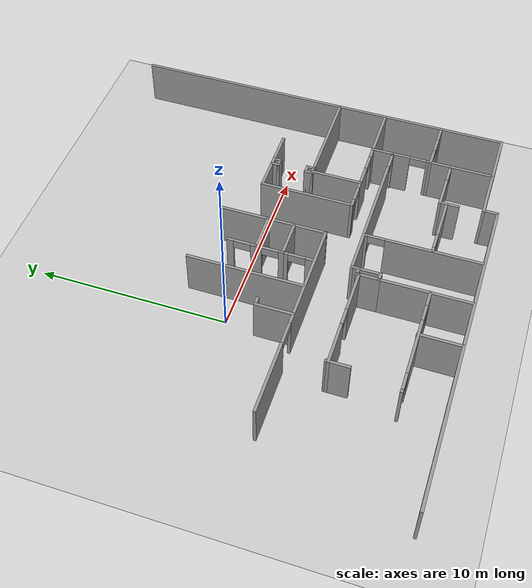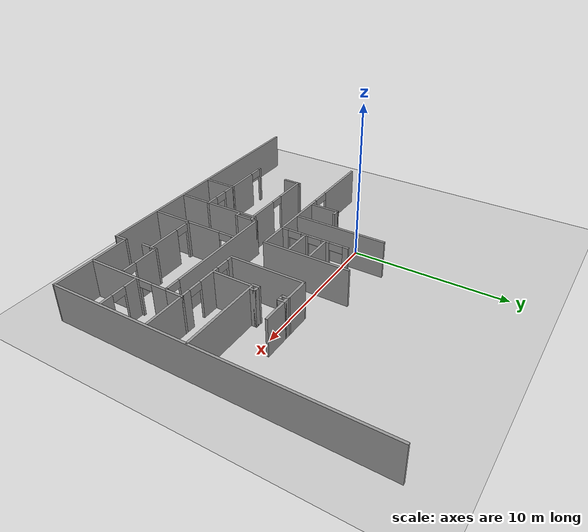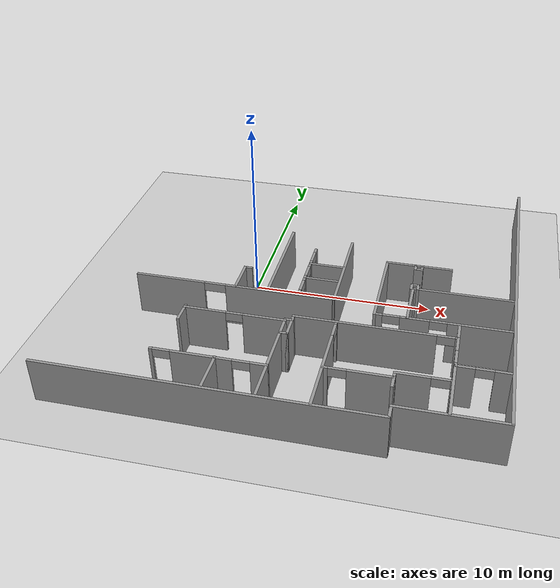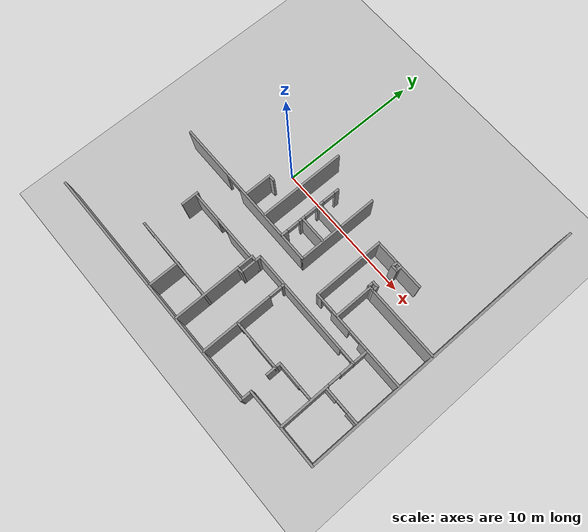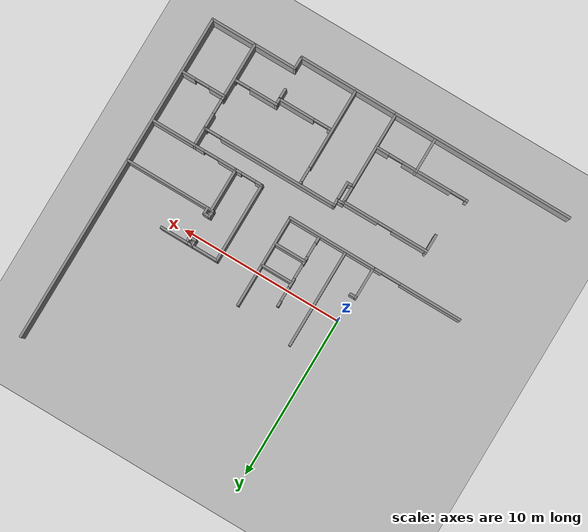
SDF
<sdf version="1.6">
 <world name="default">
  <model name="ground_plane">
   <static>1</static>
   <link name="link">
    <collision name="collision">
     <geometry><plane><normal>0 0 1</normal><size>100 100</size></plane></geometry>
     <surface><friction><ode><mu>100</mu><mu2>50</mu2></ode></friction></surface>
    </collision>
    <visual name="visual">
     <cast_shadows>0</cast_shadows>
     <geometry><plane><normal>0 0 1</normal><size>100 100</size></plane></geometry>
     <material>
      <script><uri>file://media/materials/scripts/gazebo.material</uri><name>Gazebo/Grey</name></script>
     </material>
    </visual>
   </link>
  </model>
  <model name="office02">
   <pose>-0.0751 -0.58893 0 0 -0 0</pose>
   <link name="Wall_101">
    <pose>0.512397 -5.21238 0 0 -0 0</pose>
    <visual name="Wall_101_Visual_0">
     <pose>-1.60035 0 1.25 0 -0 0</pose>
     <geometry><box><size>2.29931 0.15 2.5</size></box></geometry>
     <material>
      <script><uri>file://media/materials/scripts/gazebo.material</uri><name>Gazebo/Grey</name></script>
      <ambient>1 1 1 1</ambient>
     </material>
     <meta><layer>0</layer></meta>
    </visual>
    <collision name="Wall_101_Collision_0">
     <geometry><box><size>2.29931 0.15 2.5</size></box></geometry>
     <pose>-1.60035 0 1.25 0 -0 0</pose>
    </collision>
    <visual name="Wall_101_Visual_1">
     <pose>1.59965 0 1.25 0 -0 0</pose>
     <geometry><box><size>2.30069 0.15 2.5</size></box></geometry>
     <material>
      <script><uri>file://media/materials/scripts/gazebo.material</uri><name>Gazebo/Grey</name></script>
      <ambient>1 1 1 1</ambient>
     </material>
     <meta><layer>0</layer></meta>
    </visual>
    <collision name="Wall_101_Collision_1">
     <geometry><box><size>2.30069 0.15 2.5</size></box></geometry>
     <pose>1.59965 0 1.25 0 -0 0</pose>
    </collision>
    <visual name="Wall_101_Visual_2">
     <pose>-0.000692 0 2.25 0 -0 0</pose>
     <geometry><box><size>0.9 0.15 0.5</size></box></geometry>
     <material>
      <script><uri>file://media/materials/scripts/gazebo.material</uri><name>Gazebo/Grey</name></script>
      <ambient>1 1 1 1</ambient>
     </material>
     <meta><layer>0</layer></meta>
    </visual>
    <collision name="Wall_101_Collision_2">
     <geometry><box><size>0.9 0.15 0.5</size></box></geometry>
     <pose>-0.000692 0 2.25 0 -0 0</pose>
    </collision>
   </link>
   <link name="Wall_102">
    <collision name="Wall_102_Collision">
     <geometry><box><size>0.25 0.15 2.5</size></box></geometry>
     <pose>0 0 1.25 0 -0 0</pose>
    </collision>
    <visual name="Wall_102_Visual">
     <pose>0 0 1.25 0 -0 0</pose>
     <geometry><box><size>0.25 0.15 2.5</size></box></geometry>
     <material>
      <script><uri>file://media/materials/scripts/gazebo.material</uri><name>Gazebo/Grey</name></script>
      <ambient>1 1 1 1</ambient>
     </material>
     <meta><layer>0</layer></meta>
    </visual>
    <pose>3.1874 -5.16238 0 0 -0 1.5708</pose>
   </link>
   <link name="Wall_107">
    <collision name="Wall_107_Collision">
     <geometry><box><size>1.25 0.15 2.5</size></box></geometry>
     <pose>0 0 1.25 0 -0 0</pose>
    </collision>
    <visual name="Wall_107_Visual">
     <pose>0 0 1.25 0 -0 0</pose>
     <geometry><box><size>1.25 0.15 2.5</size></box></geometry>
     <material>
      <script><uri>file://media/materials/scripts/gazebo.material</uri><name>Gazebo/Grey</name></script>
      <ambient>1 1 1 1</ambient>
     </material>
     <meta><layer>0</layer></meta>
    </visual>
    <pose>3.1874 -5.66238 0 0 -0 -1.5708</pose>
   </link>
   <link name="Wall_115">
    <collision name="Wall_115_Collision">
     <geometry><box><size>0.5 0.15 2.5</size></box></geometry>
     <pose>0 0 1.25 0 -0 0</pose>
    </collision>
    <visual name="Wall_115_Visual">
     <pose>0 0 1.25 0 -0 0</pose>
     <geometry><box><size>0.5 0.15 2.5</size></box></geometry>
     <material>
      <script><uri>file://media/materials/scripts/gazebo.material</uri><name>Gazebo/Grey</name></script>
      <ambient>1 1 1 1</ambient>
     </material>
     <meta><layer>0</layer></meta>
    </visual>
    <pose>3.3624 -5.11238 0 0 -0 0</pose>
   </link>
   <link name="Wall_116">
    <collision name="Wall_116_Collision">
     <geometry><box><size>1.25 0.15 2.5</size></box></geometry>
     <pose>0 0 1.25 0 -0 0</pose>
    </collision>
    <visual name="Wall_116_Visual">
     <pose>0 0 1.25 0 -0 0</pose>
     <geometry><box><size>1.25 0.15 2.5</size></box></geometry>
     <material>
      <script><uri>file://media/materials/scripts/gazebo.material</uri><name>Gazebo/Grey</name></script>
      <ambient>1 1 1 1</ambient>
     </material>
     <meta><layer>0</layer></meta>
    </visual>
    <pose>3.5374 -5.66238 0 0 -0 -1.5708</pose>
   </link>
   <link name="Wall_117">
    <collision name="Wall_117_Collision">
     <geometry><box><size>0.5 0.15 2.5</size></box></geometry>
     <pose>0 0 1.25 0 -0 0</pose>
    </collision>
    <visual name="Wall_117_Visual">
     <pose>0 0 1.25 0 -0 0</pose>
     <geometry><box><size>0.5 0.15 2.5</size></box></geometry>
     <material>
      <script><uri>file://media/materials/scripts/gazebo.material</uri><name>Gazebo/Grey</name></script>
      <ambient>1 1 1 1</ambient>
     </material>
     <meta><layer>0</layer></meta>
    </visual>
    <pose>3.3624 -6.21238 0 0 -0 3.14159</pose>
   </link>
   <link name="Wall_119">
    <collision name="Wall_119_Collision">
     <geometry><box><size>4.75 0.15 2.5</size></box></geometry>
     <pose>0 0 1.25 0 -0 0</pose>
    </collision>
    <visual name="Wall_119_Visual">
     <pose>0 0 1.25 0 -0 0</pose>
     <geometry><box><size>4.75 0.15 2.5</size></box></geometry>
     <material>
      <script><uri>file://media/materials/scripts/gazebo.material</uri><name>Gazebo/Grey</name></script>
      <ambient>1 1 1 1</ambient>
     </material>
     <meta><layer>0</layer></meta>
    </visual>
    <pose>3.1874 -8.51238 0 0 -0 -1.5708</pose>
   </link>
   <link name="Wall_124">
    <pose>0.265299 -8.75263 0 0 -0 0</pose>
    <visual name="Wall_124_Visual_0">
     <pose>-2.91065 0 1.25 0 -0 0</pose>
     <geometry><box><size>0.178694 0.15 2.5</size></box></geometry>
     <material>
      <script><uri>file://media/materials/scripts/gazebo.material</uri><name>Gazebo/Grey</name></script>
      <ambient>1 1 1 1</ambient>
     </material>
     <meta><layer>0</layer></meta>
    </visual>
    <collision name="Wall_124_Collision_0">
     <geometry><box><size>0.178694 0.15 2.5</size></box></geometry>
     <pose>-2.91065 0 1.25 0 -0 0</pose>
    </collision>
    <visual name="Wall_124_Visual_1">
     <pose>-0.358875 0 1.25 0 -0 0</pose>
     <geometry><box><size>3.12486 0.15 2.5</size></box></geometry>
     <material>
      <script><uri>file://media/materials/scripts/gazebo.material</uri><name>Gazebo/Grey</name></script>
      <ambient>1 1 1 1</ambient>
     </material>
     <meta><layer>0</layer></meta>
    </visual>
    <collision name="Wall_124_Collision_1">
     <geometry><box><size>3.12486 0.15 2.5</size></box></geometry>
     <pose>-0.358875 0 1.25 0 -0 0</pose>
    </collision>
    <visual name="Wall_124_Visual_2">
     <pose>2.55178 0 1.25 0 -0 0</pose>
     <geometry><box><size>0.896444 0.15 2.5</size></box></geometry>
     <material>
      <script><uri>file://media/materials/scripts/gazebo.material</uri><name>Gazebo/Grey</name></script>
      <ambient>1 1 1 1</ambient>
     </material>
     <meta><layer>0</layer></meta>
    </visual>
    <collision name="Wall_124_Collision_2">
     <geometry><box><size>0.896444 0.15 2.5</size></box></geometry>
     <pose>2.55178 0 1.25 0 -0 0</pose>
    </collision>
    <visual name="Wall_124_Visual_3">
     <pose>-2.37131 0 2.25 0 -0 0</pose>
     <geometry><box><size>0.9 0.15 0.5</size></box></geometry>
     <material>
      <script><uri>file://media/materials/scripts/gazebo.material</uri><name>Gazebo/Grey</name></script>
      <ambient>1 1 1 1</ambient>
     </material>
     <meta><layer>0</layer></meta>
    </visual>
    <collision name="Wall_124_Collision_3">
     <geometry><box><size>0.9 0.15 0.5</size></box></geometry>
     <pose>-2.37131 0 2.25 0 -0 0</pose>
    </collision>
    <visual name="Wall_124_Visual_4">
     <pose>1.65356 0 2.25 0 -0 0</pose>
     <geometry><box><size>0.9 0.15 0.5</size></box></geometry>
     <material>
      <script><uri>file://media/materials/scripts/gazebo.material</uri><name>Gazebo/Grey</name></script>
      <ambient>1 1 1 1</ambient>
     </material>
     <meta><layer>0</layer></meta>
    </visual>
    <collision name="Wall_124_Collision_4">
     <geometry><box><size>0.9 0.15 0.5</size></box></geometry>
     <pose>1.65356 0 2.25 0 -0 0</pose>
    </collision>
   </link>
   <link name="Wall_126">
    <collision name="Wall_126_Collision">
     <geometry><box><size>2.25 0.15 2.5</size></box></geometry>
     <pose>0 0 1.25 0 -0 0</pose>
    </collision>
    <visual name="Wall_126_Visual">
     <pose>0 0 1.25 0 -0 0</pose>
     <geometry><box><size>2.25 0.15 2.5</size></box></geometry>
     <material>
      <script><uri>file://media/materials/scripts/gazebo.material</uri><name>Gazebo/Grey</name></script>
      <ambient>1 1 1 1</ambient>
     </material>
     <meta><layer>0</layer></meta>
    </visual>
    <pose>0.607037 -9.77742 0 0 -0 -1.5708</pose>
   </link>
   <link name="Wall_128">
    <collision name="Wall_128_Collision">
     <geometry><box><size>0.5 0.15 2.5</size></box></geometry>
     <pose>0 0 1.25 0 -0 0</pose>
    </collision>
    <visual name="Wall_128_Visual">
     <pose>0 0 1.25 0 -0 0</pose>
     <geometry><box><size>0.5 0.15 2.5</size></box></geometry>
     <material>
      <script><uri>file://media/materials/scripts/gazebo.material</uri><name>Gazebo/Grey</name></script>
      <ambient>1 1 1 1</ambient>
     </material>
     <meta><layer>0</layer></meta>
    </visual>
    <pose>3.5374 -4.93738 0 0 -0 1.5708</pose>
   </link>
   <link name="Wall_129">
    <pose>7.7124 -4.76238 0 0 -0 0</pose>
    <visual name="Wall_129_Visual_0">
     <pose>-0.562587 0 1.25 0 -0 0</pose>
     <geometry><box><size>7.37483 0.15 2.5</size></box></geometry>
     <material>
      <script><uri>file://media/materials/scripts/gazebo.material</uri><name>Gazebo/Grey</name></script>
      <ambient>1 1 1 1</ambient>
     </material>
     <meta><layer>0</layer></meta>
    </visual>
    <collision name="Wall_129_Collision_0">
     <geometry><box><size>7.37483 0.15 2.5</size></box></geometry>
     <pose>-0.562587 0 1.25 0 -0 0</pose>
    </collision>
    <visual name="Wall_129_Visual_1">
     <pose>4.13741 0 1.25 0 -0 0</pose>
     <geometry><box><size>0.225175 0.15 2.5</size></box></geometry>
     <material>
      <script><uri>file://media/materials/scripts/gazebo.material</uri><name>Gazebo/Grey</name></script>
      <ambient>1 1 1 1</ambient>
     </material>
     <meta><layer>0</layer></meta>
    </visual>
    <collision name="Wall_129_Collision_1">
     <geometry><box><size>0.225175 0.15 2.5</size></box></geometry>
     <pose>4.13741 0 1.25 0 -0 0</pose>
    </collision>
    <visual name="Wall_129_Visual_2">
     <pose>3.57483 0 2.25 0 -0 0</pose>
     <geometry><box><size>0.9 0.15 0.5</size></box></geometry>
     <material>
      <script><uri>file://media/materials/scripts/gazebo.material</uri><name>Gazebo/Grey</name></script>
      <ambient>1 1 1 1</ambient>
     </material>
     <meta><layer>0</layer></meta>
    </visual>
    <collision name="Wall_129_Collision_2">
     <geometry><box><size>0.9 0.15 0.5</size></box></geometry>
     <pose>3.57483 0 2.25 0 -0 0</pose>
    </collision>
   </link>
   <link name="Wall_131">
    <pose>11.8874 -7.43738 0 0 -0 -1.5708</pose>
    <visual name="Wall_131_Visual_0">
     <pose>-2.23917 0 1.25 0 -0 0</pose>
     <geometry><box><size>1.02166 0.15 2.5</size></box></geometry>
     <material>
      <script><uri>file://media/materials/scripts/gazebo.material</uri><name>Gazebo/Grey</name></script>
      <ambient>1 1 1 1</ambient>
     </material>
     <meta><layer>0</layer></meta>
    </visual>
    <collision name="Wall_131_Collision_0">
     <geometry><box><size>1.02166 0.15 2.5</size></box></geometry>
     <pose>-2.23917 0 1.25 0 -0 0</pose>
    </collision>
    <visual name="Wall_131_Visual_1">
     <pose>0.960831 0 1.25 0 -0 0</pose>
     <geometry><box><size>3.57834 0.15 2.5</size></box></geometry>
     <material>
      <script><uri>file://media/materials/scripts/gazebo.material</uri><name>Gazebo/Grey</name></script>
      <ambient>1 1 1 1</ambient>
     </material>
     <meta><layer>0</layer></meta>
    </visual>
    <collision name="Wall_131_Collision_1">
     <geometry><box><size>3.57834 0.15 2.5</size></box></geometry>
     <pose>0.960831 0 1.25 0 -0 0</pose>
    </collision>
    <visual name="Wall_131_Visual_2">
     <pose>-1.27834 0 2.25 0 -0 0</pose>
     <geometry><box><size>0.9 0.15 0.5</size></box></geometry>
     <material>
      <script><uri>file://media/materials/scripts/gazebo.material</uri><name>Gazebo/Grey</name></script>
      <ambient>1 1 1 1</ambient>
     </material>
     <meta><layer>0</layer></meta>
    </visual>
    <collision name="Wall_131_Collision_2">
     <geometry><box><size>0.9 0.15 0.5</size></box></geometry>
     <pose>-1.27834 0 2.25 0 -0 0</pose>
    </collision>
   </link>
   <link name="Wall_133">
    <pose>5.7673 -7.82763 0 0 -0 -1.5708</pose>
    <visual name="Wall_133_Visual_0">
     <pose>-2.95016 0 1.25 0 -0 0</pose>
     <geometry><box><size>0.19969 0.15 2.5</size></box></geometry>
     <material>
      <script><uri>file://media/materials/scripts/gazebo.material</uri><name>Gazebo/Grey</name></script>
      <ambient>1 1 1 1</ambient>
     </material>
     <meta><layer>0</layer></meta>
    </visual>
    <collision name="Wall_133_Collision_0">
     <geometry><box><size>0.19969 0.15 2.5</size></box></geometry>
     <pose>-2.95016 0 1.25 0 -0 0</pose>
    </collision>
    <visual name="Wall_133_Visual_1">
     <pose>0.549845 0 1.25 0 -0 0</pose>
     <geometry><box><size>5.00031 0.15 2.5</size></box></geometry>
     <material>
      <script><uri>file://media/materials/scripts/gazebo.material</uri><name>Gazebo/Grey</name></script>
      <ambient>1 1 1 1</ambient>
     </material>
     <meta><layer>0</layer></meta>
    </visual>
    <collision name="Wall_133_Collision_1">
     <geometry><box><size>5.00031 0.15 2.5</size></box></geometry>
     <pose>0.549845 0 1.25 0 -0 0</pose>
    </collision>
    <visual name="Wall_133_Visual_2">
     <pose>-2.40031 0 2.25 0 -0 0</pose>
     <geometry><box><size>0.9 0.15 0.5</size></box></geometry>
     <material>
      <script><uri>file://media/materials/scripts/gazebo.material</uri><name>Gazebo/Grey</name></script>
      <ambient>1 1 1 1</ambient>
     </material>
     <meta><layer>0</layer></meta>
    </visual>
    <collision name="Wall_133_Collision_2">
     <geometry><box><size>0.9 0.15 0.5</size></box></geometry>
     <pose>-2.40031 0 2.25 0 -0 0</pose>
    </collision>
   </link>
   <link name="Wall_135">
    <pose>7.48822 -8.27933 0 0 -0 0</pose>
    <visual name="Wall_135_Visual_0">
     <pose>-1.604 0 1.25 0 -0 0</pose>
     <geometry><box><size>0.292 0.15 2.5</size></box></geometry>
     <material>
      <script><uri>file://media/materials/scripts/gazebo.material</uri><name>Gazebo/Grey</name></script>
      <ambient>1 1 1 1</ambient>
     </material>
     <meta><layer>0</layer></meta>
    </visual>
    <collision name="Wall_135_Collision_0">
     <geometry><box><size>0.292 0.15 2.5</size></box></geometry>
     <pose>-1.604 0 1.25 0 -0 0</pose>
    </collision>
    <visual name="Wall_135_Visual_1">
     <pose>0.596 0 1.25 0 -0 0</pose>
     <geometry><box><size>2.308 0.15 2.5</size></box></geometry>
     <material>
      <script><uri>file://media/materials/scripts/gazebo.material</uri><name>Gazebo/Grey</name></script>
      <ambient>1 1 1 1</ambient>
     </material>
     <meta><layer>0</layer></meta>
    </visual>
    <collision name="Wall_135_Collision_1">
     <geometry><box><size>2.308 0.15 2.5</size></box></geometry>
     <pose>0.596 0 1.25 0 -0 0</pose>
    </collision>
    <visual name="Wall_135_Visual_2">
     <pose>-1.008 0 2.25 0 -0 0</pose>
     <geometry><box><size>0.9 0.15 0.5</size></box></geometry>
     <material>
      <script><uri>file://media/materials/scripts/gazebo.material</uri><name>Gazebo/Grey</name></script>
      <ambient>1 1 1 1</ambient>
     </material>
     <meta><layer>0</layer></meta>
    </visual>
    <collision name="Wall_135_Collision_2">
     <geometry><box><size>0.9 0.15 0.5</size></box></geometry>
     <pose>-1.008 0 2.25 0 -0 0</pose>
    </collision>
   </link>
   <link name="Wall_136">
    <collision name="Wall_136_Collision">
     <geometry><box><size>0.5 0.15 2.5</size></box></geometry>
     <pose>0 0 1.25 0 -0 0</pose>
    </collision>
    <visual name="Wall_136_Visual">
     <pose>0 0 1.25 0 -0 0</pose>
     <geometry><box><size>0.5 0.15 2.5</size></box></geometry>
     <material>
      <script><uri>file://media/materials/scripts/gazebo.material</uri><name>Gazebo/Grey</name></script>
      <ambient>1 1 1 1</ambient>
     </material>
     <meta><layer>0</layer></meta>
    </visual>
    <pose>9.16322 -8.10432 0 0 -0 1.5708</pose>
   </link>
   <link name="Wall_137">
    <pose>10.4632 -7.92933 0 0 -0 0</pose>
    <visual name="Wall_137_Visual_0">
     <pose>-0.489 0 1.25 0 -0 0</pose>
     <geometry><box><size>1.772 0.15 2.5</size></box></geometry>
     <material>
      <script><uri>file://media/materials/scripts/gazebo.material</uri><name>Gazebo/Grey</name></script>
      <ambient>1 1 1 1</ambient>
     </material>
     <meta><layer>0</layer></meta>
    </visual>
    <collision name="Wall_137_Collision_0">
     <geometry><box><size>1.772 0.15 2.5</size></box></geometry>
     <pose>-0.489 0 1.25 0 -0 0</pose>
    </collision>
    <visual name="Wall_137_Visual_1">
     <pose>1.336 0 1.25 0 -0 0</pose>
     <geometry><box><size>0.078 0.15 2.5</size></box></geometry>
     <material>
      <script><uri>file://media/materials/scripts/gazebo.material</uri><name>Gazebo/Grey</name></script>
      <ambient>1 1 1 1</ambient>
     </material>
     <meta><layer>0</layer></meta>
    </visual>
    <collision name="Wall_137_Collision_1">
     <geometry><box><size>0.078 0.15 2.5</size></box></geometry>
     <pose>1.336 0 1.25 0 -0 0</pose>
    </collision>
    <visual name="Wall_137_Visual_2">
     <pose>0.847 0 2.25 0 -0 0</pose>
     <geometry><box><size>0.9 0.15 0.5</size></box></geometry>
     <material>
      <script><uri>file://media/materials/scripts/gazebo.material</uri><name>Gazebo/Grey</name></script>
      <ambient>1 1 1 1</ambient>
     </material>
     <meta><layer>0</layer></meta>
    </visual>
    <collision name="Wall_137_Collision_2">
     <geometry><box><size>0.9 0.15 0.5</size></box></geometry>
     <pose>0.847 0 2.25 0 -0 0</pose>
    </collision>
   </link>
   <link name="Wall_139">
    <collision name="Wall_139_Collision">
     <geometry><box><size>0.75 0.15 2.5</size></box></geometry>
     <pose>0 0 1.25 0 -0 0</pose>
    </collision>
    <visual name="Wall_139_Visual">
     <pose>0 0 1.25 0 -0 0</pose>
     <geometry><box><size>0.75 0.15 2.5</size></box></geometry>
     <material>
      <script><uri>file://media/materials/scripts/gazebo.material</uri><name>Gazebo/Grey</name></script>
      <ambient>1 1 1 1</ambient>
     </material>
     <meta><layer>0</layer></meta>
    </visual>
    <pose>9.16322 -8.57933 0 0 -0 -1.5708</pose>
   </link>
   <link name="Wall_141">
    <pose>13.1852 -6.83033 0 0 -0 0</pose>
    <visual name="Wall_141_Visual_0">
     <pose>-0.865994 0 1.25 0 -0 0</pose>
     <geometry><box><size>1.01801 0.15 2.5</size></box></geometry>
     <material>
      <script><uri>file://media/materials/scripts/gazebo.material</uri><name>Gazebo/Grey</name></script>
      <ambient>1 1 1 1</ambient>
     </material>
     <meta><layer>0</layer></meta>
    </visual>
    <collision name="Wall_141_Collision_0">
     <geometry><box><size>1.01801 0.15 2.5</size></box></geometry>
     <pose>-0.865994 0 1.25 0 -0 0</pose>
    </collision>
    <visual name="Wall_141_Visual_1">
     <pose>0.959006 0 1.25 0 -0 0</pose>
     <geometry><box><size>0.831988 0.15 2.5</size></box></geometry>
     <material>
      <script><uri>file://media/materials/scripts/gazebo.material</uri><name>Gazebo/Grey</name></script>
      <ambient>1 1 1 1</ambient>
     </material>
     <meta><layer>0</layer></meta>
    </visual>
    <collision name="Wall_141_Collision_1">
     <geometry><box><size>0.831988 0.15 2.5</size></box></geometry>
     <pose>0.959006 0 1.25 0 -0 0</pose>
    </collision>
    <visual name="Wall_141_Visual_2">
     <pose>0.093012 0 2.25 0 -0 0</pose>
     <geometry><box><size>0.9 0.15 0.5</size></box></geometry>
     <material>
      <script><uri>file://media/materials/scripts/gazebo.material</uri><name>Gazebo/Grey</name></script>
      <ambient>1 1 1 1</ambient>
     </material>
     <meta><layer>0</layer></meta>
    </visual>
    <collision name="Wall_141_Collision_2">
     <geometry><box><size>0.9 0.15 0.5</size></box></geometry>
     <pose>0.093012 0 2.25 0 -0 0</pose>
    </collision>
   </link>
   <link name="Wall_144">
    <collision name="Wall_144_Collision">
     <geometry><box><size>1.25 0.15 2.5</size></box></geometry>
     <pose>0 0 1.25 0 -0 0</pose>
    </collision>
    <visual name="Wall_144_Visual">
     <pose>0 0 1.25 0 -0 0</pose>
     <geometry><box><size>1.25 0.15 2.5</size></box></geometry>
     <material>
      <script><uri>file://media/materials/scripts/gazebo.material</uri><name>Gazebo/Grey</name></script>
      <ambient>1 1 1 1</ambient>
     </material>
     <meta><layer>0</layer></meta>
    </visual>
    <pose>11.8874 -4.21238 0 0 -0 1.5708</pose>
   </link>
   <link name="Wall_145">
    <collision name="Wall_145_Collision">
     <geometry><box><size>2.75 0.15 2.5</size></box></geometry>
     <pose>0 0 1.25 0 -0 0</pose>
    </collision>
    <visual name="Wall_145_Visual">
     <pose>0 0 1.25 0 -0 0</pose>
     <geometry><box><size>2.75 0.15 2.5</size></box></geometry>
     <material>
      <script><uri>file://media/materials/scripts/gazebo.material</uri><name>Gazebo/Grey</name></script>
      <ambient>1 1 1 1</ambient>
     </material>
     <meta><layer>0</layer></meta>
    </visual>
    <pose>13.1874 -3.66238 0 0 -0 0</pose>
   </link>
   <link name="Wall_147">
    <pose>9.7124 -3.66238 0 0 -0 3.14159</pose>
    <visual name="Wall_147_Visual_0">
     <pose>-1.89817 0 1.25 0 -0 0</pose>
     <geometry><box><size>0.703666 0.15 2.5</size></box></geometry>
     <material>
      <script><uri>file://media/materials/scripts/gazebo.material</uri><name>Gazebo/Grey</name></script>
      <ambient>1 1 1 1</ambient>
     </material>
     <meta><layer>0</layer></meta>
    </visual>
    <collision name="Wall_147_Collision_0">
     <geometry><box><size>0.703666 0.15 2.5</size></box></geometry>
     <pose>-1.89817 0 1.25 0 -0 0</pose>
    </collision>
    <visual name="Wall_147_Visual_1">
     <pose>0.111166 0 1.25 0 -0 0</pose>
     <geometry><box><size>1.515 0.15 2.5</size></box></geometry>
     <material>
      <script><uri>file://media/materials/scripts/gazebo.material</uri><name>Gazebo/Grey</name></script>
      <ambient>1 1 1 1</ambient>
     </material>
     <meta><layer>0</layer></meta>
    </visual>
    <collision name="Wall_147_Collision_1">
     <geometry><box><size>1.515 0.15 2.5</size></box></geometry>
     <pose>0.111166 0 1.25 0 -0 0</pose>
    </collision>
    <visual name="Wall_147_Visual_2">
     <pose>2.00933 0 1.25 0 -0 0</pose>
     <geometry><box><size>0.481334 0.15 2.5</size></box></geometry>
     <material>
      <script><uri>file://media/materials/scripts/gazebo.material</uri><name>Gazebo/Grey</name></script>
      <ambient>1 1 1 1</ambient>
     </material>
     <meta><layer>0</layer></meta>
    </visual>
    <collision name="Wall_147_Collision_2">
     <geometry><box><size>0.481334 0.15 2.5</size></box></geometry>
     <pose>2.00933 0 1.25 0 -0 0</pose>
    </collision>
    <visual name="Wall_147_Visual_3">
     <pose>-1.09633 0 2.25 0 -0 0</pose>
     <geometry><box><size>0.9 0.15 0.5</size></box></geometry>
     <material>
      <script><uri>file://media/materials/scripts/gazebo.material</uri><name>Gazebo/Grey</name></script>
      <ambient>1 1 1 1</ambient>
     </material>
     <meta><layer>0</layer></meta>
    </visual>
    <collision name="Wall_147_Collision_3">
     <geometry><box><size>0.9 0.15 0.5</size></box></geometry>
     <pose>-1.09633 0 2.25 0 -0 0</pose>
    </collision>
    <visual name="Wall_147_Visual_4">
     <pose>1.31867 0 2.25 0 -0 0</pose>
     <geometry><box><size>0.9 0.15 0.5</size></box></geometry>
     <material>
      <script><uri>file://media/materials/scripts/gazebo.material</uri><name>Gazebo/Grey</name></script>
      <ambient>1 1 1 1</ambient>
     </material>
     <meta><layer>0</layer></meta>
    </visual>
    <collision name="Wall_147_Collision_4">
     <geometry><box><size>0.9 0.15 0.5</size></box></geometry>
     <pose>1.31867 0 2.25 0 -0 0</pose>
    </collision>
   </link>
   <link name="Wall_148">
    <collision name="Wall_148_Collision">
     <geometry><box><size>5 0.15 2.5</size></box></geometry>
     <pose>0 0 1.25 0 -0 0</pose>
    </collision>
    <visual name="Wall_148_Visual">
     <pose>0 0 1.25 0 -0 0</pose>
     <geometry><box><size>5 0.15 2.5</size></box></geometry>
     <material>
      <script><uri>file://media/materials/scripts/gazebo.material</uri><name>Gazebo/Grey</name></script>
      <ambient>1 1 1 1</ambient>
     </material>
     <meta><layer>0</layer></meta>
    </visual>
    <pose>7.5374 -1.23738 0 0 -0 1.5708</pose>
   </link>
   <link name="Wall_149">
    <collision name="Wall_149_Collision">
     <geometry><box><size>1.75 0.15 2.5</size></box></geometry>
     <pose>0 0 1.25 0 -0 0</pose>
    </collision>
    <visual name="Wall_149_Visual">
     <pose>0 0 1.25 0 -0 0</pose>
     <geometry><box><size>1.75 0.15 2.5</size></box></geometry>
     <material>
      <script><uri>file://media/materials/scripts/gazebo.material</uri><name>Gazebo/Grey</name></script>
      <ambient>1 1 1 1</ambient>
     </material>
     <meta><layer>0</layer></meta>
    </visual>
    <pose>8.3374 1.18762 0 0 -0 0</pose>
   </link>
   <link name="Wall_160">
    <collision name="Wall_160_Collision">
     <geometry><box><size>2.75 0.15 2.5</size></box></geometry>
     <pose>0 0 1.25 0 -0 0</pose>
    </collision>
    <visual name="Wall_160_Visual">
     <pose>0 0 1.25 0 -0 0</pose>
     <geometry><box><size>2.75 0.15 2.5</size></box></geometry>
     <material>
      <script><uri>file://media/materials/scripts/gazebo.material</uri><name>Gazebo/Grey</name></script>
      <ambient>1 1 1 1</ambient>
     </material>
     <meta><layer>0</layer></meta>
    </visual>
    <pose>9.22173 -2.33855 0 0 -0 -1.5708</pose>
   </link>
   <link name="Wall_162">
    <collision name="Wall_162_Collision">
     <geometry><box><size>5.5 0.15 2.5</size></box></geometry>
     <pose>0 0 1.25 0 -0 0</pose>
    </collision>
    <visual name="Wall_162_Visual">
     <pose>0 0 1.25 0 -0 0</pose>
     <geometry><box><size>5.5 0.15 2.5</size></box></geometry>
     <material>
      <script><uri>file://media/materials/scripts/gazebo.material</uri><name>Gazebo/Grey</name></script>
      <ambient>1 1 1 1</ambient>
     </material>
     <meta><layer>0</layer></meta>
    </visual>
    <pose>11.8967 -1.03855 0 0 -0 0</pose>
   </link>
   <link name="Wall_169">
    <collision name="Wall_169_Collision">
     <geometry><box><size>0.5 0.15 2.5</size></box></geometry>
     <pose>0 0 1.25 0 -0 0</pose>
    </collision>
    <visual name="Wall_169_Visual">
     <pose>0 0 1.25 0 -0 0</pose>
     <geometry><box><size>0.5 0.15 2.5</size></box></geometry>
     <material>
      <script><uri>file://media/materials/scripts/gazebo.material</uri><name>Gazebo/Grey</name></script>
      <ambient>1 1 1 1</ambient>
     </material>
     <meta><layer>0</layer></meta>
    </visual>
    <pose>9.3124 1.18762 0 0 -0 0</pose>
   </link>
   <link name="Wall_17">
    <collision name="Wall_17_Collision">
     <geometry><box><size>20.5768 0.15 2.5</size></box></geometry>
     <pose>0 0 1.25 0 -0 0</pose>
    </collision>
    <visual name="Wall_17_Visual">
     <pose>0 0 1.25 0 -0 0</pose>
     <geometry><box><size>20.5768 0.15 2.5</size></box></geometry>
     <material>
      <script><uri>file://media/materials/scripts/gazebo.material</uri><name>Gazebo/Grey</name></script>
      <ambient>1 1 1 1</ambient>
     </material>
     <meta><layer>0</layer></meta>
    </visual>
    <pose>14.634 0.128909 0 0 -0 1.56854</pose>
   </link>
   <link name="Wall_170">
    <collision name="Wall_170_Collision">
     <geometry><box><size>0.5 0.15 2.5</size></box></geometry>
     <pose>0 0 1.25 0 -0 0</pose>
    </collision>
    <visual name="Wall_170_Visual">
     <pose>0 0 1.25 0 -0 0</pose>
     <geometry><box><size>0.5 0.15 2.5</size></box></geometry>
     <material>
      <script><uri>file://media/materials/scripts/gazebo.material</uri><name>Gazebo/Grey</name></script>
      <ambient>1 1 1 1</ambient>
     </material>
     <meta><layer>0</layer></meta>
    </visual>
    <pose>9.4874 1.01262 0 0 -0 -1.5708</pose>
   </link>
   <link name="Wall_171">
    <collision name="Wall_171_Collision">
     <geometry><box><size>0.5 0.15 2.5</size></box></geometry>
     <pose>0 0 1.25 0 -0 0</pose>
    </collision>
    <visual name="Wall_171_Visual">
     <pose>0 0 1.25 0 -0 0</pose>
     <geometry><box><size>0.5 0.15 2.5</size></box></geometry>
     <material>
      <script><uri>file://media/materials/scripts/gazebo.material</uri><name>Gazebo/Grey</name></script>
      <ambient>1 1 1 1</ambient>
     </material>
     <meta><layer>0</layer></meta>
    </visual>
    <pose>9.3124 0.837616 0 0 -0 3.14159</pose>
   </link>
   <link name="Wall_172">
    <collision name="Wall_172_Collision">
     <geometry><box><size>0.5 0.15 2.5</size></box></geometry>
     <pose>0 0 1.25 0 -0 0</pose>
    </collision>
    <visual name="Wall_172_Visual">
     <pose>0 0 1.25 0 -0 0</pose>
     <geometry><box><size>0.5 0.15 2.5</size></box></geometry>
     <material>
      <script><uri>file://media/materials/scripts/gazebo.material</uri><name>Gazebo/Grey</name></script>
      <ambient>1 1 1 1</ambient>
     </material>
     <meta><layer>0</layer></meta>
    </visual>
    <pose>9.1374 1.01262 0 0 -0 1.5708</pose>
   </link>
   <link name="Wall_174">
    <collision name="Wall_174_Collision">
     <geometry><box><size>0.25 0.15 2.5</size></box></geometry>
     <pose>0 0 1.25 0 -0 0</pose>
    </collision>
    <visual name="Wall_174_Visual">
     <pose>0 0 1.25 0 -0 0</pose>
     <geometry><box><size>0.25 0.15 2.5</size></box></geometry>
     <material>
      <script><uri>file://media/materials/scripts/gazebo.material</uri><name>Gazebo/Grey</name></script>
      <ambient>1 1 1 1</ambient>
     </material>
     <meta><layer>0</layer></meta>
    </visual>
    <pose>9.17173 -1.03855 0 0 -0 3.14159</pose>
   </link>
   <link name="Wall_175">
    <collision name="Wall_175_Collision">
     <geometry><box><size>0.5 0.15 2.5</size></box></geometry>
     <pose>0 0 1.25 0 -0 0</pose>
    </collision>
    <visual name="Wall_175_Visual">
     <pose>0 0 1.25 0 -0 0</pose>
     <geometry><box><size>0.5 0.15 2.5</size></box></geometry>
     <material>
      <script><uri>file://media/materials/scripts/gazebo.material</uri><name>Gazebo/Grey</name></script>
      <ambient>1 1 1 1</ambient>
     </material>
     <meta><layer>0</layer></meta>
    </visual>
    <pose>9.12173 -0.863553 0 0 -0 1.5708</pose>
   </link>
   <link name="Wall_176">
    <collision name="Wall_176_Collision">
     <geometry><box><size>0.5 0.15 2.5</size></box></geometry>
     <pose>0 0 1.25 0 -0 0</pose>
    </collision>
    <visual name="Wall_176_Visual">
     <pose>0 0 1.25 0 -0 0</pose>
     <geometry><box><size>0.5 0.15 2.5</size></box></geometry>
     <material>
      <script><uri>file://media/materials/scripts/gazebo.material</uri><name>Gazebo/Grey</name></script>
      <ambient>1 1 1 1</ambient>
     </material>
     <meta><layer>0</layer></meta>
    </visual>
    <pose>9.29673 -0.688553 0 0 -0 0</pose>
   </link>
   <link name="Wall_177">
    <collision name="Wall_177_Collision">
     <geometry><box><size>0.5 0.15 2.5</size></box></geometry>
     <pose>0 0 1.25 0 -0 0</pose>
    </collision>
    <visual name="Wall_177_Visual">
     <pose>0 0 1.25 0 -0 0</pose>
     <geometry><box><size>0.5 0.15 2.5</size></box></geometry>
     <material>
      <script><uri>file://media/materials/scripts/gazebo.material</uri><name>Gazebo/Grey</name></script>
      <ambient>1 1 1 1</ambient>
     </material>
     <meta><layer>0</layer></meta>
    </visual>
    <pose>9.47173 -0.863553 0 0 -0 -1.5708</pose>
   </link>
   <link name="Wall_179">
    <collision name="Wall_179_Collision">
     <geometry><box><size>1.75 0.15 2.5</size></box></geometry>
     <pose>0 0 1.25 0 -0 0</pose>
    </collision>
    <visual name="Wall_179_Visual">
     <pose>0 0 1.25 0 -0 0</pose>
     <geometry><box><size>1.75 0.15 2.5</size></box></geometry>
     <material>
      <script><uri>file://media/materials/scripts/gazebo.material</uri><name>Gazebo/Grey</name></script>
      <ambient>1 1 1 1</ambient>
     </material>
     <meta><layer>0</layer></meta>
    </visual>
    <pose>10.2874 1.18762 0 0 -0 0</pose>
   </link>
   <link name="Wall_25">
    <collision name="Wall_25_Collision">
     <geometry><box><size>5.45 0.15 2.5</size></box></geometry>
     <pose>0 0 1.25 0 -0 0</pose>
    </collision>
    <visual name="Wall_25_Visual">
     <pose>0 0 1.25 0 -0 0</pose>
     <geometry><box><size>5.45 0.15 2.5</size></box></geometry>
     <material>
      <script><uri>file://media/materials/scripts/gazebo.material</uri><name>Gazebo/Grey</name></script>
      <ambient>1 1 1 1</ambient>
     </material>
     <meta><layer>0</layer></meta>
    </visual>
    <pose>11.9543 -10.1726 0 0 -0 0</pose>
   </link>
   <link name="Wall_299">
    <pose>-0.22036 -2.90788 0 0 -0 -0.002451</pose>
    <visual name="Wall_299_Visual_0">
     <pose>-3.58539 0 1.25 0 -0 0</pose>
     <geometry><box><size>3.89199 0.15 2.5</size></box></geometry>
     <material>
      <script><uri>file://media/materials/scripts/gazebo.material</uri><name>Gazebo/Grey</name></script>
      <ambient>1 1 1 1</ambient>
     </material>
     <meta><layer>0</layer></meta>
    </visual>
    <collision name="Wall_299_Collision_0">
     <geometry><box><size>3.89199 0.15 2.5</size></box></geometry>
     <pose>-3.58539 0 1.25 0 -0 0</pose>
    </collision>
    <visual name="Wall_299_Visual_1">
     <pose>2.5383 0 1.25 0 -0 0</pose>
     <geometry><box><size>5.98618 0.15 2.5</size></box></geometry>
     <material>
      <script><uri>file://media/materials/scripts/gazebo.material</uri><name>Gazebo/Grey</name></script>
      <ambient>1 1 1 1</ambient>
     </material>
     <meta><layer>0</layer></meta>
    </visual>
    <collision name="Wall_299_Collision_1">
     <geometry><box><size>5.98618 0.15 2.5</size></box></geometry>
     <pose>2.5383 0 1.25 0 -0 0</pose>
    </collision>
    <visual name="Wall_299_Visual_2">
     <pose>-1.0471 0 2.25 0 -0 0</pose>
     <geometry><box><size>1.1846 0.15 0.5</size></box></geometry>
     <material>
      <script><uri>file://media/materials/scripts/gazebo.material</uri><name>Gazebo/Grey</name></script>
      <ambient>1 1 1 1</ambient>
     </material>
     <meta><layer>0</layer></meta>
    </visual>
    <collision name="Wall_299_Collision_2">
     <geometry><box><size>1.1846 0.15 0.5</size></box></geometry>
     <pose>-1.0471 0 2.25 0 -0 0</pose>
    </collision>
   </link>
   <link name="Wall_300">
    <collision name="Wall_300_Collision">
     <geometry><box><size>5.75 0.15 2.5</size></box></geometry>
     <pose>0 0 1.25 0 -0 0</pose>
    </collision>
    <visual name="Wall_300_Visual">
     <pose>0 0 1.25 0 -0 0</pose>
     <geometry><box><size>5.75 0.15 2.5</size></box></geometry>
     <material>
      <script><uri>file://media/materials/scripts/gazebo.material</uri><name>Gazebo/Grey</name></script>
      <ambient>1 1 1 1</ambient>
     </material>
     <meta><layer>0</layer></meta>
    </visual>
    <pose>5.26276 -0.121254 0 0 -0 1.5708</pose>
   </link>
   <link name="Wall_311">
    <collision name="Wall_311_Collision">
     <geometry><box><size>6.072 0.15 2.5</size></box></geometry>
     <pose>0 0 1.25 0 -0 0</pose>
    </collision>
    <visual name="Wall_311_Visual">
     <pose>0 0 1.25 0 -0 0</pose>
     <geometry><box><size>6.072 0.15 2.5</size></box></geometry>
     <material>
      <script><uri>file://media/materials/scripts/gazebo.material</uri><name>Gazebo/Grey</name></script>
      <ambient>1 1 1 1</ambient>
     </material>
     <meta><layer>0</layer></meta>
    </visual>
    <pose>1.6533 0.139366 0 0 -0 -1.5708</pose>
   </link>
   <link name="Wall_320">
    <pose>3.33849 0.153513 0 0 -0 -1.5708</pose>
    <visual name="Wall_320_Visual_0">
     <pose>-1.32133 0 1.25 0 -0 0</pose>
     <geometry><box><size>0.357336 0.15 2.5</size></box></geometry>
     <material>
      <script><uri>file://media/materials/scripts/gazebo.material</uri><name>Gazebo/Grey</name></script>
      <ambient>1 1 1 1</ambient>
     </material>
     <meta><layer>0</layer></meta>
    </visual>
    <collision name="Wall_320_Collision_0">
     <geometry><box><size>0.357336 0.15 2.5</size></box></geometry>
     <pose>-1.32133 0 1.25 0 -0 0</pose>
    </collision>
    <visual name="Wall_320_Visual_1">
     <pose>0.039671 0 1.25 0 -0 0</pose>
     <geometry><box><size>0.564671 0.15 2.5</size></box></geometry>
     <material>
      <script><uri>file://media/materials/scripts/gazebo.material</uri><name>Gazebo/Grey</name></script>
      <ambient>1 1 1 1</ambient>
     </material>
     <meta><layer>0</layer></meta>
    </visual>
    <collision name="Wall_320_Collision_1">
     <geometry><box><size>0.564671 0.15 2.5</size></box></geometry>
     <pose>0.039671 0 1.25 0 -0 0</pose>
    </collision>
    <visual name="Wall_320_Visual_2">
     <pose>1.361 0 1.25 0 -0 0</pose>
     <geometry><box><size>0.277993 0.15 2.5</size></box></geometry>
     <material>
      <script><uri>file://media/materials/scripts/gazebo.material</uri><name>Gazebo/Grey</name></script>
      <ambient>1 1 1 1</ambient>
     </material>
     <meta><layer>0</layer></meta>
    </visual>
    <collision name="Wall_320_Collision_2">
     <geometry><box><size>0.277993 0.15 2.5</size></box></geometry>
     <pose>1.361 0 1.25 0 -0 0</pose>
    </collision>
    <visual name="Wall_320_Visual_3">
     <pose>-0.692664 0 2.25 0 -0 0</pose>
     <geometry><box><size>0.9 0.15 0.5</size></box></geometry>
     <material>
      <script><uri>file://media/materials/scripts/gazebo.material</uri><name>Gazebo/Grey</name></script>
      <ambient>1 1 1 1</ambient>
     </material>
     <meta><layer>0</layer></meta>
    </visual>
    <collision name="Wall_320_Collision_3">
     <geometry><box><size>0.9 0.15 0.5</size></box></geometry>
     <pose>-0.692664 0 2.25 0 -0 0</pose>
    </collision>
    <visual name="Wall_320_Visual_4">
     <pose>0.772007 0 2.25 0 -0 0</pose>
     <geometry><box><size>0.9 0.15 0.5</size></box></geometry>
     <material>
      <script><uri>file://media/materials/scripts/gazebo.material</uri><name>Gazebo/Grey</name></script>
      <ambient>1 1 1 1</ambient>
     </material>
     <meta><layer>0</layer></meta>
    </visual>
    <collision name="Wall_320_Collision_4">
     <geometry><box><size>0.9 0.15 0.5</size></box></geometry>
     <pose>0.772007 0 2.25 0 -0 0</pose>
    </collision>
   </link>
   <link name="Wall_321">
    <collision name="Wall_321_Collision">
     <geometry><box><size>2 0.15 2.5</size></box></geometry>
     <pose>0 0 1.25 0 -0 0</pose>
    </collision>
    <visual name="Wall_321_Visual">
     <pose>0 0 1.25 0 -0 0</pose>
     <geometry><box><size>2 0.15 2.5</size></box></geometry>
     <material>
      <script><uri>file://media/materials/scripts/gazebo.material</uri><name>Gazebo/Grey</name></script>
      <ambient>1 1 1 1</ambient>
     </material>
     <meta><layer>0</layer></meta>
    </visual>
    <pose>4.26349 -1.27149 0 0 -0 0</pose>
   </link>
   <link name="Wall_323">
    <collision name="Wall_323_Collision">
     <geometry><box><size>2 0.15 2.5</size></box></geometry>
     <pose>0 0 1.25 0 -0 0</pose>
    </collision>
    <visual name="Wall_323_Visual">
     <pose>0 0 1.25 0 -0 0</pose>
     <geometry><box><size>2 0.15 2.5</size></box></geometry>
     <material>
      <script><uri>file://media/materials/scripts/gazebo.material</uri><name>Gazebo/Grey</name></script>
      <ambient>1 1 1 1</ambient>
     </material>
     <meta><layer>0</layer></meta>
    </visual>
    <pose>4.28266 0.113842 0 0 -0 0</pose>
   </link>
   <link name="Wall_325">
    <pose>3.33849 -2.07149 0 0 -0 -1.5708</pose>
    <visual name="Wall_325_Visual_0">
     <pose>-0.697346 0 1.25 0 -0 0</pose>
     <geometry><box><size>0.355307 0.15 2.5</size></box></geometry>
     <material>
      <script><uri>file://media/materials/scripts/gazebo.material</uri><name>Gazebo/Grey</name></script>
      <ambient>1 1 1 1</ambient>
     </material>
     <meta><layer>0</layer></meta>
    </visual>
    <collision name="Wall_325_Collision_0">
     <geometry><box><size>0.355307 0.15 2.5</size></box></geometry>
     <pose>-0.697346 0 1.25 0 -0 0</pose>
    </collision>
    <visual name="Wall_325_Visual_1">
     <pose>0.627654 0 1.25 0 -0 0</pose>
     <geometry><box><size>0.494693 0.15 2.5</size></box></geometry>
     <material>
      <script><uri>file://media/materials/scripts/gazebo.material</uri><name>Gazebo/Grey</name></script>
      <ambient>1 1 1 1</ambient>
     </material>
     <meta><layer>0</layer></meta>
    </visual>
    <collision name="Wall_325_Collision_1">
     <geometry><box><size>0.494693 0.15 2.5</size></box></geometry>
     <pose>0.627654 0 1.25 0 -0 0</pose>
    </collision>
    <visual name="Wall_325_Visual_2">
     <pose>-0.069693 0 2.25 0 -0 0</pose>
     <geometry><box><size>0.9 0.15 0.5</size></box></geometry>
     <material>
      <script><uri>file://media/materials/scripts/gazebo.material</uri><name>Gazebo/Grey</name></script>
      <ambient>1 1 1 1</ambient>
     </material>
     <meta><layer>0</layer></meta>
    </visual>
    <collision name="Wall_325_Collision_2">
     <geometry><box><size>0.9 0.15 0.5</size></box></geometry>
     <pose>-0.069693 0 2.25 0 -0 0</pose>
    </collision>
   </link>
   <link name="Wall_327">
    <collision name="Wall_327_Collision">
     <geometry><box><size>2 0.15 2.5</size></box></geometry>
     <pose>0 0 1.25 0 -0 0</pose>
    </collision>
    <visual name="Wall_327_Visual">
     <pose>0 0 1.25 0 -0 0</pose>
     <geometry><box><size>2 0.15 2.5</size></box></geometry>
     <material>
      <script><uri>file://media/materials/scripts/gazebo.material</uri><name>Gazebo/Grey</name></script>
      <ambient>1 1 1 1</ambient>
     </material>
     <meta><layer>0</layer></meta>
    </visual>
    <pose>-0.127565 -1.93645 0 0 -0 1.5708</pose>
   </link>
   <link name="Wall_328">
    <collision name="Wall_328_Collision">
     <geometry><box><size>0.5 0.15 2.5</size></box></geometry>
     <pose>0 0 1.25 0 -0 0</pose>
    </collision>
    <visual name="Wall_328_Visual">
     <pose>0 0 1.25 0 -0 0</pose>
     <geometry><box><size>0.5 0.15 2.5</size></box></geometry>
     <material>
      <script><uri>file://media/materials/scripts/gazebo.material</uri><name>Gazebo/Grey</name></script>
      <ambient>1 1 1 1</ambient>
     </material>
     <meta><layer>0</layer></meta>
    </visual>
    <pose>0.047435 -1.01145 0 0 -0 0</pose>
   </link>
   <link name="Wall_86">
    <collision name="Wall_86_Collision">
     <geometry><box><size>1.25 0.15 2.5</size></box></geometry>
     <pose>0 0 1.25 0 -0 0</pose>
    </collision>
    <visual name="Wall_86_Visual">
     <pose>0 0 1.25 0 -0 0</pose>
     <geometry><box><size>1.25 0.15 2.5</size></box></geometry>
     <material>
      <script><uri>file://media/materials/scripts/gazebo.material</uri><name>Gazebo/Grey</name></script>
      <ambient>1 1 1 1</ambient>
     </material>
     <meta><layer>0</layer></meta>
    </visual>
    <pose>-2.1626 -5.66238 0 0 -0 1.5708</pose>
   </link>
   <link name="Wall_9">
    <collision name="Wall_9_Collision">
     <geometry><box><size>17.434 0.15 2.5</size></box></geometry>
     <pose>0 0 1.25 0 -0 0</pose>
    </collision>
    <visual name="Wall_9_Visual">
     <pose>0 0 1.25 0 -0 0</pose>
     <geometry><box><size>17.434 0.15 2.5</size></box></geometry>
     <material>
      <script><uri>file://media/materials/scripts/gazebo.material</uri><name>Gazebo/Grey</name></script>
      <ambient>1 1 1 1</ambient>
     </material>
     <meta><layer>0</layer></meta>
    </visual>
    <pose>0.648299 -10.8861 0 0 -0 -0.001215</pose>
   </link>
   <link name="Wall_96">
    <collision name="Wall_96_Collision">
     <geometry><box><size>0.8 0.15 2.5</size></box></geometry>
     <pose>0 0 1.25 0 -0 0</pose>
    </collision>
    <visual name="Wall_96_Visual">
     <pose>0 0 1.25 0 -0 0</pose>
     <geometry><box><size>0.8 0.15 2.5</size></box></geometry>
     <material>
      <script><uri>file://media/materials/scripts/gazebo.material</uri><name>Gazebo/Grey</name></script>
      <ambient>1 1 1 1</ambient>
     </material>
     <meta><layer>0</layer></meta>
    </visual>
    <pose>9.3043 -10.4976 0 0 -0 -1.5708</pose>
   </link>
   <static>1</static>
  </model>
 </world>
</sdf>
